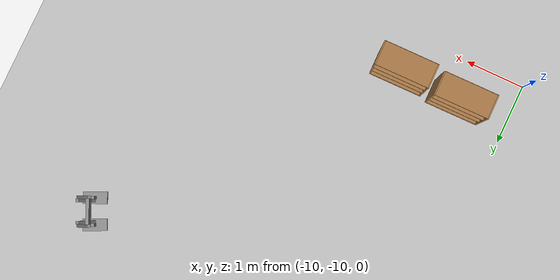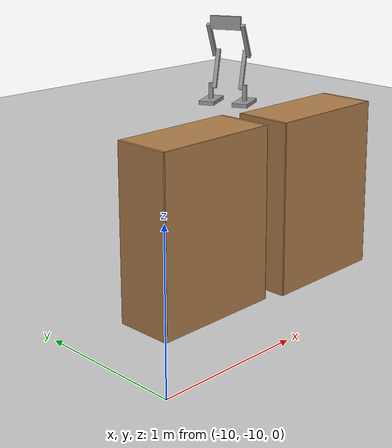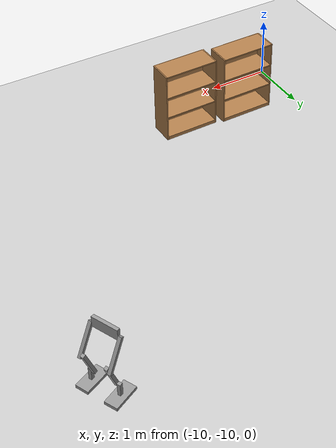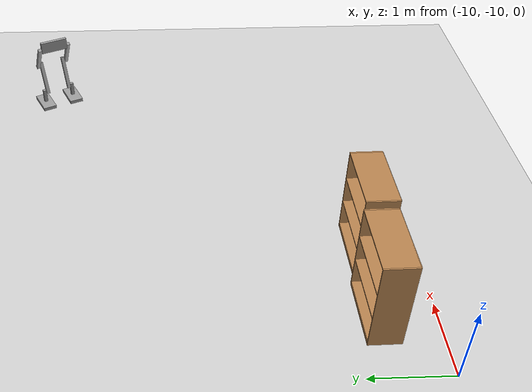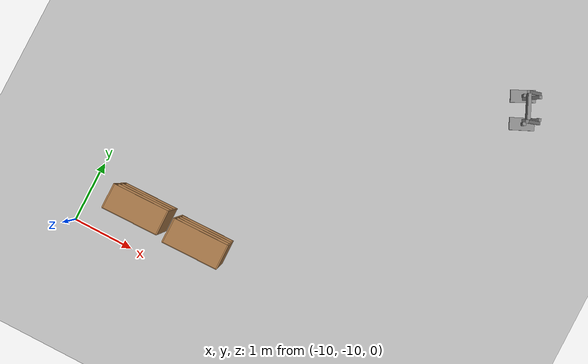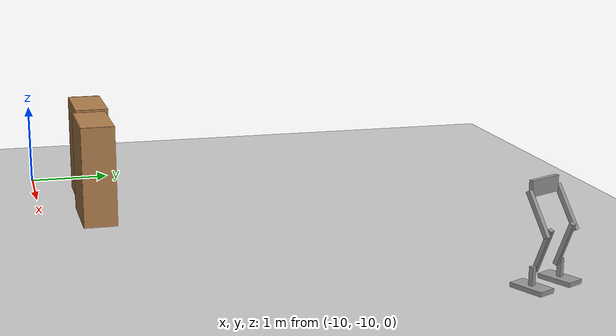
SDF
<sdf version="1.6">
 <world name="myworld">
  <model name="ground_plane">
   <static>1</static>
   <link name="link">
    <collision name="collision">
     <geometry><plane><normal>0 0 1</normal><size>100 100</size></plane></geometry>
     <surface><friction><ode><mu>100</mu><mu2>50</mu2></ode></friction></surface>
    </collision>
    <visual name="visual">
     <cast_shadows>0</cast_shadows>
     <geometry><plane><normal>0 0 1</normal><size>100 100</size></plane></geometry>
     <material>
      <script><uri>file://media/materials/scripts/gazebo.material</uri><name>Gazebo/Grey</name></script>
     </material>
    </visual>
   </link>
  </model>
  <model name="bookshelf_clone">
   <static>1</static>
   <link name="link">
    <inertial><mass>1</mass></inertial>
    <collision name="back">
     <pose>0 0.005 0.6 0 -0 0</pose>
     <geometry><box><size>0.9 0.01 1.2</size></box></geometry>
    </collision>
    <visual name="visual1">
     <pose>0 0.005 0.6 0 -0 0</pose>
     <geometry><box><size>0.9 0.01 1.2</size></box></geometry>
     <material>
      <script><uri>file://media/materials/scripts/gazebo.material</uri><name>Gazebo/Wood</name></script>
     </material>
    </visual>
    <collision name="left_side">
     <pose>0.45 -0.195 0.6 0 -0 0</pose>
     <geometry><box><size>0.02 0.4 1.2</size></box></geometry>
    </collision>
    <visual name="visual2">
     <pose>0.45 -0.195 0.6 0 -0 0</pose>
     <geometry><box><size>0.02 0.4 1.2</size></box></geometry>
     <material>
      <script><uri>file://media/materials/scripts/gazebo.material</uri><name>Gazebo/Wood</name></script>
     </material>
    </visual>
    <collision name="right_side">
     <pose>-0.45 -0.195 0.6 0 -0 0</pose>
     <geometry><box><size>0.02 0.4 1.2</size></box></geometry>
    </collision>
    <visual name="visual3">
     <pose>-0.45 -0.195 0.6 0 -0 0</pose>
     <geometry><box><size>0.02 0.4 1.2</size></box></geometry>
     <material>
      <script><uri>file://media/materials/scripts/gazebo.material</uri><name>Gazebo/Wood</name></script>
     </material>
    </visual>
    <collision name="bottom">
     <pose>0 -0.195 0.03 0 -0 0</pose>
     <geometry><box><size>0.88 0.4 0.06</size></box></geometry>
    </collision>
    <visual name="visual4">
     <pose>0 -0.195 0.03 0 -0 0</pose>
     <geometry><box><size>0.88 0.4 0.06</size></box></geometry>
     <material>
      <script><uri>file://media/materials/scripts/gazebo.material</uri><name>Gazebo/Wood</name></script>
     </material>
    </visual>
    <collision name="top">
     <pose>0 -0.195 1.19 0 -0 0</pose>
     <geometry><box><size>0.88 0.4 0.02</size></box></geometry>
    </collision>
    <visual name="visual5">
     <pose>0 -0.195 1.19 0 -0 0</pose>
     <geometry><box><size>0.88 0.4 0.02</size></box></geometry>
     <material>
      <script><uri>file://media/materials/scripts/gazebo.material</uri><name>Gazebo/Wood</name></script>
     </material>
    </visual>
    <collision name="low_shelf">
     <pose>0 -0.195 0.43 0 -0 0</pose>
     <geometry><box><size>0.88 0.4 0.02</size></box></geometry>
    </collision>
    <visual name="visual6">
     <pose>0 -0.195 0.43 0 -0 0</pose>
     <geometry><box><size>0.88 0.4 0.02</size></box></geometry>
     <material>
      <script><uri>file://media/materials/scripts/gazebo.material</uri><name>Gazebo/Wood</name></script>
     </material>
    </visual>
    <collision name="high_shelf">
     <pose>0 -0.195 0.8 0 -0 0</pose>
     <geometry><box><size>0.88 0.4 0.02</size></box></geometry>
    </collision>
    <visual name="visual7">
     <pose>0 -0.195 0.8 0 -0 0</pose>
     <geometry><box><size>0.88 0.4 0.02</size></box></geometry>
     <material>
      <script><uri>file://media/materials/scripts/gazebo.material</uri><name>Gazebo/Wood</name></script>
     </material>
    </visual>
   </link>
   <pose>-9.09492 -9.49507 0 0 0 -3.1294</pose>
  </model>
  <model name="bookshelf_clone_2">
   <static>1</static>
   <link name="link">
    <inertial><mass>1</mass></inertial>
    <collision name="back">
     <pose>0 0.005 0.6 0 -0 0</pose>
     <geometry><box><size>0.9 0.01 1.2</size></box></geometry>
    </collision>
    <visual name="visual1">
     <pose>0 0.005 0.6 0 -0 0</pose>
     <geometry><box><size>0.9 0.01 1.2</size></box></geometry>
     <material>
      <script><uri>file://media/materials/scripts/gazebo.material</uri><name>Gazebo/Wood</name></script>
     </material>
    </visual>
    <collision name="left_side">
     <pose>0.45 -0.195 0.6 0 -0 0</pose>
     <geometry><box><size>0.02 0.4 1.2</size></box></geometry>
    </collision>
    <visual name="visual2">
     <pose>0.45 -0.195 0.6 0 -0 0</pose>
     <geometry><box><size>0.02 0.4 1.2</size></box></geometry>
     <material>
      <script><uri>file://media/materials/scripts/gazebo.material</uri><name>Gazebo/Wood</name></script>
     </material>
    </visual>
    <collision name="right_side">
     <pose>-0.45 -0.195 0.6 0 -0 0</pose>
     <geometry><box><size>0.02 0.4 1.2</size></box></geometry>
    </collision>
    <visual name="visual3">
     <pose>-0.45 -0.195 0.6 0 -0 0</pose>
     <geometry><box><size>0.02 0.4 1.2</size></box></geometry>
     <material>
      <script><uri>file://media/materials/scripts/gazebo.material</uri><name>Gazebo/Wood</name></script>
     </material>
    </visual>
    <collision name="bottom">
     <pose>0 -0.195 0.03 0 -0 0</pose>
     <geometry><box><size>0.88 0.4 0.06</size></box></geometry>
    </collision>
    <visual name="visual4">
     <pose>0 -0.195 0.03 0 -0 0</pose>
     <geometry><box><size>0.88 0.4 0.06</size></box></geometry>
     <material>
      <script><uri>file://media/materials/scripts/gazebo.material</uri><name>Gazebo/Wood</name></script>
     </material>
    </visual>
    <collision name="top">
     <pose>0 -0.195 1.19 0 -0 0</pose>
     <geometry><box><size>0.88 0.4 0.02</size></box></geometry>
    </collision>
    <visual name="visual5">
     <pose>0 -0.195 1.19 0 -0 0</pose>
     <geometry><box><size>0.88 0.4 0.02</size></box></geometry>
     <material>
      <script><uri>file://media/materials/scripts/gazebo.material</uri><name>Gazebo/Wood</name></script>
     </material>
    </visual>
    <collision name="low_shelf">
     <pose>0 -0.195 0.43 0 -0 0</pose>
     <geometry><box><size>0.88 0.4 0.02</size></box></geometry>
    </collision>
    <visual name="visual6">
     <pose>0 -0.195 0.43 0 -0 0</pose>
     <geometry><box><size>0.88 0.4 0.02</size></box></geometry>
     <material>
      <script><uri>file://media/materials/scripts/gazebo.material</uri><name>Gazebo/Wood</name></script>
     </material>
    </visual>
    <collision name="high_shelf">
     <pose>0 -0.195 0.8 0 -0 0</pose>
     <geometry><box><size>0.88 0.4 0.02</size></box></geometry>
    </collision>
    <visual name="visual7">
     <pose>0 -0.195 0.8 0 -0 0</pose>
     <geometry><box><size>0.88 0.4 0.02</size></box></geometry>
     <material>
      <script><uri>file://media/materials/scripts/gazebo.material</uri><name>Gazebo/Wood</name></script>
     </material>
    </visual>
   </link>
   <pose>-8.06567 -9.53637 0 0 0 -3.1294</pose>
  </model>
  <model name="legs_clone_clone">
   <link name="link_3">
    <pose>-0.025604 0.0125 -0.323607 0 -0 0</pose>
    <inertial>
     <mass>1</mass>
     <inertia>
      <ixx>0.166667</ixx>
      <ixy>0</ixy>
      <ixz>0</ixz>
      <iyy>0.166667</iyy>
      <iyz>0</iyz>
      <izz>0.166667</izz>
     </inertia>
    </inertial>
    <visual name="visual">
     <geometry><box><size>0.4 0.2 0.05</size></box></geometry>
     <material>
      <lighting>1</lighting>
      <script><uri>file://media/materials/scripts/gazebo.material</uri><name>Gazebo/Grey</name></script>
      <shader type="pixel"><normal_map>__default__</normal_map></shader>
      <ambient>0.3 0.3 0.3 1</ambient>
      <diffuse>0.7 0.7 0.7 1</diffuse>
      <specular>0.01 0.01 0.01 1</specular>
      <emissive>0 0 0 1</emissive>
     </material>
    </visual>
    <collision name="collision">
     <geometry><box><size>0.4 0.2 0.05</size></box></geometry>
     <surface>
      <friction>
       <ode><mu>1</mu><mu2>1</mu2><fdir1>0 0 0</fdir1><slip1>0</slip1><slip2>0</slip2></ode>
       <torsional>
        <coefficient>1</coefficient>
        <patch_radius>0</patch_radius>
        <surface_radius>0</surface_radius>
        <use_patch_radius>1</use_patch_radius>
        <ode><slip>0</slip></ode>
       </torsional>
      </friction>
      <bounce><restitution_coefficient>0</restitution_coefficient><threshold>1e+06</threshold></bounce>
      <contact>
       <collide_without_contact>0</collide_without_contact>
       <collide_without_contact_bitmask>1</collide_without_contact_bitmask>
       <collide_bitmask>1</collide_bitmask>
       <ode>
        <soft_cfm>0</soft_cfm>
        <soft_erp>0.2</soft_erp>
        <kp>1e+13</kp>
        <kd>1</kd>
        <max_vel>0.01</max_vel>
        <min_depth>0</min_depth>
       </ode>
       <bullet>
        <split_impulse>1</split_impulse>
        <split_impulse_penetration_threshold>-0.01</split_impulse_penetration_threshold>
        <soft_cfm>0</soft_cfm>
        <soft_erp>0.2</soft_erp>
        <kp>1e+13</kp>
        <kd>1</kd>
       </bullet>
      </contact>
     </surface>
    </collision>
   </link>
   <link name="link_3_clone">
    <pose>-0.025604 0.0125 -0.198607 0 -0 0</pose>
    <inertial>
     <mass>1</mass>
     <inertia>
      <ixx>0.166667</ixx>
      <ixy>0</ixy>
      <ixz>0</ixz>
      <iyy>0.166667</iyy>
      <iyz>0</iyz>
      <izz>0.166667</izz>
     </inertia>
    </inertial>
    <visual name="visual">
     <geometry><box><size>0.05 0.05 0.2</size></box></geometry>
     <material>
      <lighting>1</lighting>
      <script><uri>file://media/materials/scripts/gazebo.material</uri><name>Gazebo/Grey</name></script>
      <shader type="pixel"><normal_map>__default__</normal_map></shader>
      <ambient>0.3 0.3 0.3 1</ambient>
      <diffuse>0.7 0.7 0.7 1</diffuse>
      <specular>0.01 0.01 0.01 1</specular>
      <emissive>0 0 0 1</emissive>
     </material>
    </visual>
    <collision name="collision">
     <geometry><box><size>0.05 0.05 0.2</size></box></geometry>
     <surface>
      <friction>
       <ode><mu>1</mu><mu2>1</mu2><fdir1>0 0 0</fdir1><slip1>0</slip1><slip2>0</slip2></ode>
       <torsional>
        <coefficient>1</coefficient>
        <patch_radius>0</patch_radius>
        <surface_radius>0</surface_radius>
        <use_patch_radius>1</use_patch_radius>
        <ode><slip>0</slip></ode>
       </torsional>
      </friction>
      <bounce><restitution_coefficient>0</restitution_coefficient><threshold>1e+06</threshold></bounce>
      <contact>
       <collide_without_contact>0</collide_without_contact>
       <collide_without_contact_bitmask>1</collide_without_contact_bitmask>
       <collide_bitmask>1</collide_bitmask>
       <ode>
        <soft_cfm>0</soft_cfm>
        <soft_erp>0.2</soft_erp>
        <kp>1e+13</kp>
        <kd>1</kd>
        <max_vel>0.01</max_vel>
        <min_depth>0</min_depth>
       </ode>
       <bullet>
        <split_impulse>1</split_impulse>
        <split_impulse_penetration_threshold>-0.01</split_impulse_penetration_threshold>
        <soft_cfm>0</soft_cfm>
        <soft_erp>0.2</soft_erp>
        <kp>1e+13</kp>
        <kd>1</kd>
       </bullet>
      </contact>
     </surface>
    </collision>
   </link>
   <link name="link_3_clone_0">
    <pose>-0.032125 -0.429277 -0.323607 0 0 -0.027543</pose>
    <inertial>
     <mass>1</mass>
     <inertia>
      <ixx>0.166667</ixx>
      <ixy>0</ixy>
      <ixz>0</ixz>
      <iyy>0.166667</iyy>
      <iyz>0</iyz>
      <izz>0.166667</izz>
     </inertia>
    </inertial>
    <visual name="visual">
     <geometry><box><size>0.4 0.2 0.05</size></box></geometry>
     <material>
      <lighting>1</lighting>
      <script><uri>file://media/materials/scripts/gazebo.material</uri><name>Gazebo/Grey</name></script>
      <shader type="pixel"><normal_map>__default__</normal_map></shader>
      <ambient>0.3 0.3 0.3 1</ambient>
      <diffuse>0.7 0.7 0.7 1</diffuse>
      <specular>0.01 0.01 0.01 1</specular>
      <emissive>0 0 0 1</emissive>
     </material>
    </visual>
    <collision name="collision">
     <geometry><box><size>0.4 0.2 0.05</size></box></geometry>
     <surface>
      <friction>
       <ode><mu>1</mu><mu2>1</mu2><fdir1>0 0 0</fdir1><slip1>0</slip1><slip2>0</slip2></ode>
       <torsional>
        <coefficient>1</coefficient>
        <patch_radius>0</patch_radius>
        <surface_radius>0</surface_radius>
        <use_patch_radius>1</use_patch_radius>
        <ode><slip>0</slip></ode>
       </torsional>
      </friction>
      <bounce><restitution_coefficient>0</restitution_coefficient><threshold>1e+06</threshold></bounce>
      <contact>
       <collide_without_contact>0</collide_without_contact>
       <collide_without_contact_bitmask>1</collide_without_contact_bitmask>
       <collide_bitmask>1</collide_bitmask>
       <ode>
        <soft_cfm>0</soft_cfm>
        <soft_erp>0.2</soft_erp>
        <kp>1e+13</kp>
        <kd>1</kd>
        <max_vel>0.01</max_vel>
        <min_depth>0</min_depth>
       </ode>
       <bullet>
        <split_impulse>1</split_impulse>
        <split_impulse_penetration_threshold>-0.01</split_impulse_penetration_threshold>
        <soft_cfm>0</soft_cfm>
        <soft_erp>0.2</soft_erp>
        <kp>1e+13</kp>
        <kd>1</kd>
       </bullet>
      </contact>
     </surface>
    </collision>
   </link>
   <link name="link_3_clone_clone">
    <pose>0.043999 -0.0375 0.075459 0 0.35469 0</pose>
    <inertial>
     <mass>3.32557</mass>
     <inertia>
      <ixx>0.123285</ixx>
      <ixy>0</ixy>
      <ixz>0</ixz>
      <iyy>0.123285</iyy>
      <iyz>0</iyz>
      <izz>0.00138565</izz>
     </inertia>
    </inertial>
    <gravity>0</gravity>
    <visual name="visual">
     <geometry><box><size>0.05 0.05 0.5</size></box></geometry>
     <material>
      <lighting>1</lighting>
      <script><uri>file://media/materials/scripts/gazebo.material</uri><name>Gazebo/Grey</name></script>
      <shader type="pixel"><normal_map>__default__</normal_map></shader>
      <ambient>0.3 0.3 0.3 1</ambient>
      <diffuse>0.7 0.7 0.7 1</diffuse>
      <specular>0.01 0.01 0.01 1</specular>
      <emissive>0 0 0 1</emissive>
     </material>
    </visual>
    <collision name="collision">
     <geometry><box><size>0.05 0.05 0.5</size></box></geometry>
     <surface>
      <friction>
       <ode><mu>1</mu><mu2>1</mu2><fdir1>0 0 0</fdir1><slip1>0</slip1><slip2>0</slip2></ode>
       <torsional>
        <coefficient>1</coefficient>
        <patch_radius>0</patch_radius>
        <surface_radius>0</surface_radius>
        <use_patch_radius>1</use_patch_radius>
        <ode><slip>0</slip></ode>
       </torsional>
      </friction>
      <bounce><restitution_coefficient>0</restitution_coefficient><threshold>1e+06</threshold></bounce>
      <contact>
       <collide_without_contact>0</collide_without_contact>
       <collide_without_contact_bitmask>1</collide_without_contact_bitmask>
       <collide_bitmask>1</collide_bitmask>
       <ode>
        <soft_cfm>0</soft_cfm>
        <soft_erp>0.2</soft_erp>
        <kp>1e+13</kp>
        <kd>1</kd>
        <max_vel>0.01</max_vel>
        <min_depth>0</min_depth>
       </ode>
       <bullet>
        <split_impulse>1</split_impulse>
        <split_impulse_penetration_threshold>-0.01</split_impulse_penetration_threshold>
        <soft_cfm>0</soft_cfm>
        <soft_erp>0.2</soft_erp>
        <kp>1e+13</kp>
        <kd>1</kd>
       </bullet>
      </contact>
     </surface>
    </collision>
   </link>
   <link name="link_3_clone_clone_0">
    <pose>-0.121815 -0.209742 0.684075 0 0 -0.027543</pose>
    <inertial>
     <mass>6.61232</mass>
     <inertia>
      <ixx>0.100765</ixx>
      <ixy>0</ixy>
      <ixz>0</ixz>
      <iyy>0.0169584</iyy>
      <iyz>0</iyz>
      <izz>0.0865618</izz>
     </inertia>
    </inertial>
    <gravity>0</gravity>
    <visual name="visual">
     <geometry><box><size>0.05 0.393182 0.168154</size></box></geometry>
     <material>
      <lighting>1</lighting>
      <script><uri>file://media/materials/scripts/gazebo.material</uri><name>Gazebo/Grey</name></script>
      <shader type="pixel"><normal_map>__default__</normal_map></shader>
      <ambient>0.3 0.3 0.3 1</ambient>
      <diffuse>0.7 0.7 0.7 1</diffuse>
      <specular>0.01 0.01 0.01 1</specular>
      <emissive>0 0 0 1</emissive>
     </material>
    </visual>
    <collision name="collision">
     <geometry><box><size>0.05 0.393182 0.168154</size></box></geometry>
     <surface>
      <friction>
       <ode><mu>1</mu><mu2>1</mu2><fdir1>0 0 0</fdir1><slip1>0</slip1><slip2>0</slip2></ode>
       <torsional>
        <coefficient>1</coefficient>
        <patch_radius>0</patch_radius>
        <surface_radius>0</surface_radius>
        <use_patch_radius>1</use_patch_radius>
        <ode><slip>0</slip></ode>
       </torsional>
      </friction>
      <bounce><restitution_coefficient>0</restitution_coefficient><threshold>1e+06</threshold></bounce>
      <contact>
       <collide_without_contact>0</collide_without_contact>
       <collide_without_contact_bitmask>1</collide_without_contact_bitmask>
       <collide_bitmask>1</collide_bitmask>
       <ode>
        <soft_cfm>0</soft_cfm>
        <soft_erp>0.2</soft_erp>
        <kp>1e+13</kp>
        <kd>1</kd>
        <max_vel>0.01</max_vel>
        <min_depth>0</min_depth>
       </ode>
       <bullet>
        <split_impulse>1</split_impulse>
        <split_impulse_penetration_threshold>-0.01</split_impulse_penetration_threshold>
        <soft_cfm>0</soft_cfm>
        <soft_erp>0.2</soft_erp>
        <kp>1e+13</kp>
        <kd>1</kd>
       </bullet>
      </contact>
     </surface>
    </collision>
   </link>
   <link name="link_3_clone_clone_1">
    <pose>-0.030003 -0.43296 -0.198607 0 0 -0.027543</pose>
    <inertial>
     <mass>1</mass>
     <inertia>
      <ixx>0.166667</ixx>
      <ixy>0</ixy>
      <ixz>0</ixz>
      <iyy>0.166667</iyy>
      <iyz>0</iyz>
      <izz>0.166667</izz>
     </inertia>
    </inertial>
    <visual name="visual">
     <geometry><box><size>0.05 0.05 0.2</size></box></geometry>
     <material>
      <lighting>1</lighting>
      <script><uri>file://media/materials/scripts/gazebo.material</uri><name>Gazebo/Grey</name></script>
      <shader type="pixel"><normal_map>__default__</normal_map></shader>
      <ambient>0.3 0.3 0.3 1</ambient>
      <diffuse>0.7 0.7 0.7 1</diffuse>
      <specular>0.01 0.01 0.01 1</specular>
      <emissive>0 0 0 1</emissive>
     </material>
    </visual>
    <collision name="collision">
     <geometry><box><size>0.05 0.05 0.2</size></box></geometry>
     <surface>
      <friction>
       <ode><mu>1</mu><mu2>1</mu2><fdir1>0 0 0</fdir1><slip1>0</slip1><slip2>0</slip2></ode>
       <torsional>
        <coefficient>1</coefficient>
        <patch_radius>0</patch_radius>
        <surface_radius>0</surface_radius>
        <use_patch_radius>1</use_patch_radius>
        <ode><slip>0</slip></ode>
       </torsional>
      </friction>
      <bounce><restitution_coefficient>0</restitution_coefficient><threshold>1e+06</threshold></bounce>
      <contact>
       <collide_without_contact>0</collide_without_contact>
       <collide_without_contact_bitmask>1</collide_without_contact_bitmask>
       <collide_bitmask>1</collide_bitmask>
       <ode>
        <soft_cfm>0</soft_cfm>
        <soft_erp>0.2</soft_erp>
        <kp>1e+13</kp>
        <kd>1</kd>
        <max_vel>0.01</max_vel>
        <min_depth>0</min_depth>
       </ode>
       <bullet>
        <split_impulse>1</split_impulse>
        <split_impulse_penetration_threshold>-0.01</split_impulse_penetration_threshold>
        <soft_cfm>0</soft_cfm>
        <soft_erp>0.2</soft_erp>
        <kp>1e+13</kp>
        <kd>1</kd>
       </bullet>
      </contact>
     </surface>
    </collision>
   </link>
   <link name="link_3_clone_clone_clone">
    <pose>0.007207 0.0125 0.446756 0 -0.539922 0</pose>
    <inertial>
     <mass>3.32557</mass>
     <inertia>
      <ixx>0.123285</ixx>
      <ixy>0</ixy>
      <ixz>0</ixz>
      <iyy>0.123285</iyy>
      <iyz>0</iyz>
      <izz>0.00138565</izz>
     </inertia>
    </inertial>
    <gravity>0</gravity>
    <visual name="visual">
     <geometry><box><size>0.05 0.05 0.5</size></box></geometry>
     <material>
      <lighting>1</lighting>
      <script><uri>file://media/materials/scripts/gazebo.material</uri><name>Gazebo/Grey</name></script>
      <shader type="pixel"><normal_map>__default__</normal_map></shader>
      <ambient>0.3 0.3 0.3 1</ambient>
      <diffuse>0.7 0.7 0.7 1</diffuse>
      <specular>0.01 0.01 0.01 1</specular>
      <emissive>0 0 0 1</emissive>
     </material>
    </visual>
    <collision name="collision">
     <geometry><box><size>0.05 0.05 0.5</size></box></geometry>
     <surface>
      <friction>
       <ode><mu>1</mu><mu2>1</mu2><fdir1>0 0 0</fdir1><slip1>0</slip1><slip2>0</slip2></ode>
       <torsional>
        <coefficient>1</coefficient>
        <patch_radius>0</patch_radius>
        <surface_radius>0</surface_radius>
        <use_patch_radius>1</use_patch_radius>
        <ode><slip>0</slip></ode>
       </torsional>
      </friction>
      <bounce><restitution_coefficient>0</restitution_coefficient><threshold>1e+06</threshold></bounce>
      <contact>
       <collide_without_contact>0</collide_without_contact>
       <collide_without_contact_bitmask>1</collide_without_contact_bitmask>
       <collide_bitmask>1</collide_bitmask>
       <ode>
        <soft_cfm>0</soft_cfm>
        <soft_erp>0.2</soft_erp>
        <kp>1e+13</kp>
        <kd>1</kd>
        <max_vel>0.01</max_vel>
        <min_depth>0</min_depth>
       </ode>
       <bullet>
        <split_impulse>1</split_impulse>
        <split_impulse_penetration_threshold>-0.01</split_impulse_penetration_threshold>
        <soft_cfm>0</soft_cfm>
        <soft_erp>0.2</soft_erp>
        <kp>1e+13</kp>
        <kd>1</kd>
       </bullet>
      </contact>
     </surface>
    </collision>
   </link>
   <link name="link_3_clone_clone_clone_0">
    <pose>0.043514 -0.384966 0.075459 -0 0.354687 -0.027543</pose>
    <inertial>
     <mass>3.32557</mass>
     <inertia>
      <ixx>0.123285</ixx>
      <ixy>0</ixy>
      <ixz>0</ixz>
      <iyy>0.123285</iyy>
      <iyz>0</iyz>
      <izz>0.00138565</izz>
     </inertia>
    </inertial>
    <gravity>0</gravity>
    <visual name="visual">
     <geometry><box><size>0.05 0.05 0.5</size></box></geometry>
     <material>
      <lighting>1</lighting>
      <script><uri>file://media/materials/scripts/gazebo.material</uri><name>Gazebo/Grey</name></script>
      <shader type="pixel"><normal_map>__default__</normal_map></shader>
      <ambient>0.3 0.3 0.3 1</ambient>
      <diffuse>0.7 0.7 0.7 1</diffuse>
      <specular>0.01 0.01 0.01 1</specular>
      <emissive>0 0 0 1</emissive>
     </material>
    </visual>
    <collision name="collision">
     <geometry><box><size>0.05 0.05 0.5</size></box></geometry>
     <surface>
      <friction>
       <ode><mu>1</mu><mu2>1</mu2><fdir1>0 0 0</fdir1><slip1>0</slip1><slip2>0</slip2></ode>
       <torsional>
        <coefficient>1</coefficient>
        <patch_radius>0</patch_radius>
        <surface_radius>0</surface_radius>
        <use_patch_radius>1</use_patch_radius>
        <ode><slip>0</slip></ode>
       </torsional>
      </friction>
      <bounce><restitution_coefficient>0</restitution_coefficient><threshold>1e+06</threshold></bounce>
      <contact>
       <collide_without_contact>0</collide_without_contact>
       <collide_without_contact_bitmask>1</collide_without_contact_bitmask>
       <collide_bitmask>1</collide_bitmask>
       <ode>
        <soft_cfm>0</soft_cfm>
        <soft_erp>0.2</soft_erp>
        <kp>1e+13</kp>
        <kd>1</kd>
        <max_vel>0.01</max_vel>
        <min_depth>0</min_depth>
       </ode>
       <bullet>
        <split_impulse>1</split_impulse>
        <split_impulse_penetration_threshold>-0.01</split_impulse_penetration_threshold>
        <soft_cfm>0</soft_cfm>
        <soft_erp>0.2</soft_erp>
        <kp>1e+13</kp>
        <kd>1</kd>
       </bullet>
      </contact>
     </surface>
    </collision>
   </link>
   <link name="link_3_clone_clone_clone_clone">
    <pose>-0.000471 -0.433774 0.448999 0 -0.539886 -0.027543</pose>
    <inertial>
     <mass>3.32557</mass>
     <inertia>
      <ixx>0.123285</ixx>
      <ixy>0</ixy>
      <ixz>0</ixz>
      <iyy>0.123285</iyy>
      <iyz>0</iyz>
      <izz>0.00138565</izz>
     </inertia>
    </inertial>
    <gravity>0</gravity>
    <visual name="visual">
     <geometry><box><size>0.05 0.05 0.5</size></box></geometry>
     <material>
      <lighting>1</lighting>
      <script><uri>file://media/materials/scripts/gazebo.material</uri><name>Gazebo/Grey</name></script>
      <shader type="pixel"><normal_map>__default__</normal_map></shader>
      <ambient>0.3 0.3 0.3 1</ambient>
      <diffuse>0.7 0.7 0.7 1</diffuse>
      <specular>0.01 0.01 0.01 1</specular>
      <emissive>0 0 0 1</emissive>
     </material>
    </visual>
    <collision name="collision">
     <geometry><box><size>0.05 0.05 0.5</size></box></geometry>
     <surface>
      <friction>
       <ode><mu>1</mu><mu2>1</mu2><fdir1>0 0 0</fdir1><slip1>0</slip1><slip2>0</slip2></ode>
       <torsional>
        <coefficient>1</coefficient>
        <patch_radius>0</patch_radius>
        <surface_radius>0</surface_radius>
        <use_patch_radius>1</use_patch_radius>
        <ode><slip>0</slip></ode>
       </torsional>
      </friction>
      <bounce><restitution_coefficient>0</restitution_coefficient><threshold>1e+06</threshold></bounce>
      <contact>
       <collide_without_contact>0</collide_without_contact>
       <collide_without_contact_bitmask>1</collide_without_contact_bitmask>
       <collide_bitmask>1</collide_bitmask>
       <ode>
        <soft_cfm>0</soft_cfm>
        <soft_erp>0.2</soft_erp>
        <kp>1e+13</kp>
        <kd>1</kd>
        <max_vel>0.01</max_vel>
        <min_depth>0</min_depth>
       </ode>
       <bullet>
        <split_impulse>1</split_impulse>
        <split_impulse_penetration_threshold>-0.01</split_impulse_penetration_threshold>
        <soft_cfm>0</soft_cfm>
        <soft_erp>0.2</soft_erp>
        <kp>1e+13</kp>
        <kd>1</kd>
       </bullet>
      </contact>
     </surface>
    </collision>
   </link>
   <joint name="link_3_JOINT_10" type="fixed">
    <parent>link_3</parent>
    <child>link_3_clone</child>
    <physics>
     <ode><limit><cfm>0</cfm><erp>0.2</erp></limit><suspension><cfm>0</cfm><erp>0.2</erp></suspension></ode>
    </physics>
   </joint>
   <joint name="link_3_clone_JOINT_13" type="revolute">
    <parent>link_3_clone</parent>
    <child>link_3_clone_clone</child>
    <pose>0 0 -0.23 0 -0 0</pose>
    <axis>
     <xyz>0 1 0</xyz>
     <use_parent_model_frame>0</use_parent_model_frame>
     <limit>
      <lower>-1.79769e+308</lower>
      <upper>1.79769e+308</upper>
      <effort>-1</effort>
      <velocity>-1</velocity>
     </limit>
     <dynamics>
      <spring_reference>0</spring_reference>
      <spring_stiffness>0</spring_stiffness>
      <damping>0</damping>
      <friction>0</friction>
     </dynamics>
    </axis>
    <physics>
     <ode><limit><cfm>0</cfm><erp>0.2</erp></limit><suspension><cfm>0</cfm><erp>0.2</erp></suspension></ode>
    </physics>
   </joint>
   <joint name="link_3_clone_clone_0_JOINT_0" type="revolute">
    <parent>link_3_clone_clone_0</parent>
    <child>link_3_clone_clone_clone</child>
    <pose>0 0 0.23 0 -0 0</pose>
    <axis>
     <xyz>0 1 0</xyz>
     <use_parent_model_frame>0</use_parent_model_frame>
     <limit>
      <lower>-1.79769e+308</lower>
      <upper>1.79769e+308</upper>
      <effort>-1</effort>
      <velocity>-1</velocity>
     </limit>
     <dynamics>
      <spring_reference>0</spring_reference>
      <spring_stiffness>0</spring_stiffness>
      <damping>0</damping>
      <friction>0</friction>
     </dynamics>
    </axis>
    <physics>
     <ode><limit><cfm>0</cfm><erp>0.2</erp></limit><suspension><cfm>0</cfm><erp>0.2</erp></suspension></ode>
    </physics>
   </joint>
   <joint name="link_3_clone_clone_1_JOINT_4" type="fixed">
    <parent>link_3_clone_clone_1</parent>
    <child>link_3_clone_0</child>
    <physics>
     <ode><limit><cfm>0</cfm><erp>0.2</erp></limit><suspension><cfm>0</cfm><erp>0.2</erp></suspension></ode>
    </physics>
   </joint>
   <joint name="link_3_clone_clone_JOINT_14" type="revolute">
    <parent>link_3_clone_clone</parent>
    <child>link_3_clone_clone_clone</child>
    <pose>0 0 -0.23 0 -0 0</pose>
    <axis>
     <xyz>0 1 0</xyz>
     <use_parent_model_frame>0</use_parent_model_frame>
     <limit>
      <lower>-1.79769e+308</lower>
      <upper>1.79769e+308</upper>
      <effort>-1</effort>
      <velocity>-1</velocity>
     </limit>
     <dynamics>
      <spring_reference>0</spring_reference>
      <spring_stiffness>0</spring_stiffness>
      <damping>0</damping>
      <friction>0</friction>
     </dynamics>
    </axis>
    <physics>
     <ode><limit><cfm>0</cfm><erp>0.2</erp></limit><suspension><cfm>0</cfm><erp>0.2</erp></suspension></ode>
    </physics>
   </joint>
   <joint name="link_3_clone_clone_clone_0_JOINT_2" type="revolute">
    <parent>link_3_clone_clone_clone_0</parent>
    <child>link_3_clone_clone_clone_clone</child>
    <pose>0 0 -0.23 0 -0 0</pose>
    <axis>
     <xyz>0 1 0</xyz>
     <use_parent_model_frame>0</use_parent_model_frame>
     <limit>
      <lower>-1.79769e+308</lower>
      <upper>1.79769e+308</upper>
      <effort>-1</effort>
      <velocity>-1</velocity>
     </limit>
     <dynamics>
      <spring_reference>0</spring_reference>
      <spring_stiffness>0</spring_stiffness>
      <damping>0</damping>
      <friction>0</friction>
     </dynamics>
    </axis>
    <physics>
     <ode><limit><cfm>0</cfm><erp>0.2</erp></limit><suspension><cfm>0</cfm><erp>0.2</erp></suspension></ode>
    </physics>
   </joint>
   <joint name="link_3_clone_clone_clone_0_JOINT_3" type="revolute">
    <parent>link_3_clone_clone_1</parent>
    <child>link_3_clone_clone_clone_0</child>
    <pose>0 0 -0.23 0 -0 0</pose>
    <axis>
     <xyz>0 1 0</xyz>
     <use_parent_model_frame>0</use_parent_model_frame>
     <limit>
      <lower>-1.79769e+308</lower>
      <upper>1.79769e+308</upper>
      <effort>-1</effort>
      <velocity>-1</velocity>
     </limit>
     <dynamics>
      <spring_reference>0</spring_reference>
      <spring_stiffness>0</spring_stiffness>
      <damping>0</damping>
      <friction>0</friction>
     </dynamics>
    </axis>
    <physics>
     <ode><limit><cfm>0</cfm><erp>0.2</erp></limit><suspension><cfm>0</cfm><erp>0.2</erp></suspension></ode>
    </physics>
   </joint>
   <joint name="link_3_clone_clone_clone_clone_JOINT_1" type="revolute">
    <parent>link_3_clone_clone_0</parent>
    <child>link_3_clone_clone_clone_clone</child>
    <pose>0 0 0.23 0 -0 0</pose>
    <axis>
     <xyz>0 1 0</xyz>
     <use_parent_model_frame>0</use_parent_model_frame>
     <limit>
      <lower>-1.79769e+308</lower>
      <upper>1.79769e+308</upper>
      <effort>-1</effort>
      <velocity>-1</velocity>
     </limit>
     <dynamics>
      <spring_reference>0</spring_reference>
      <spring_stiffness>0</spring_stiffness>
      <damping>0</damping>
      <friction>0</friction>
     </dynamics>
    </axis>
    <physics>
     <ode><limit><cfm>0</cfm><erp>0.2</erp></limit><suspension><cfm>0</cfm><erp>0.2</erp></suspension></ode>
    </physics>
   </joint>
   <static>0</static>
   <pose>-4.5738 -4.97115 0.348607 0 -2e-06 0.454007</pose>
  </model>
 </world>
</sdf>
